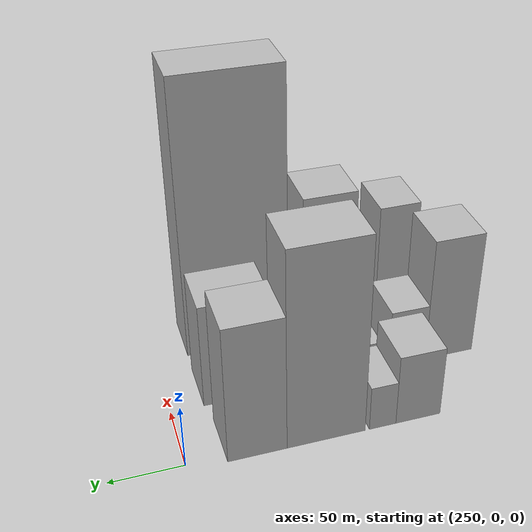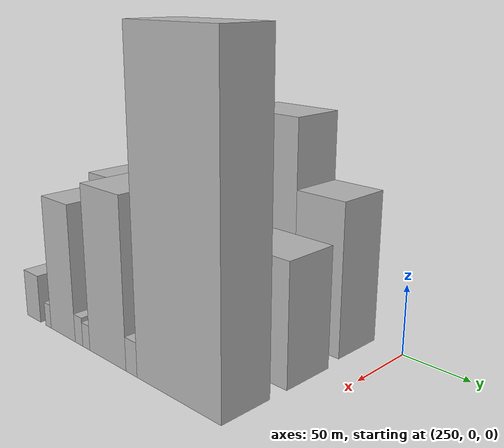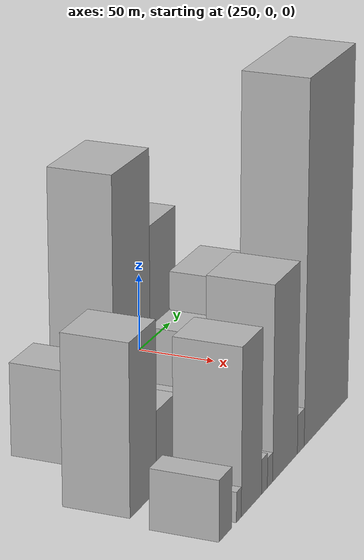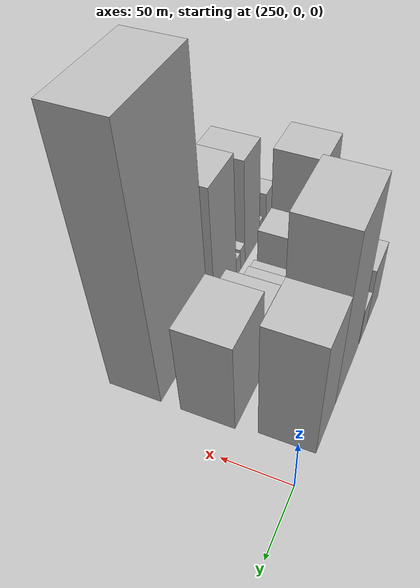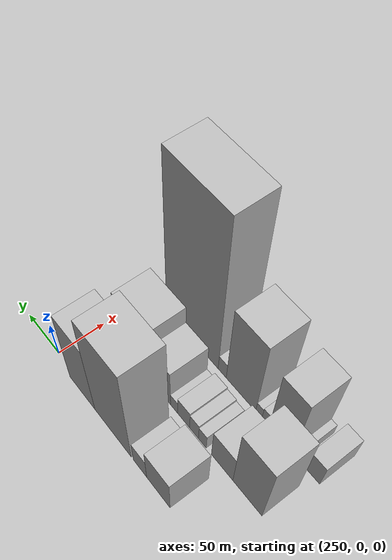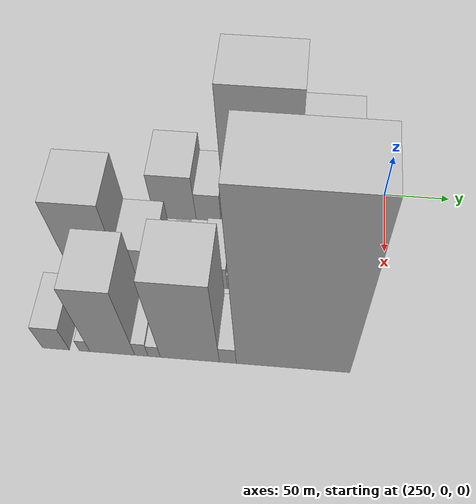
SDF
<sdf version="1.6">
 <world name="default">
  <model name="building_175">
   <static>1</static>
   <pose>265.0000 -158.5495 0 0.000000 0.000000 0.000000</pose>
   <link name="link">
    <pose>0 0 28.50 0 0 0</pose>
    <collision name="collision"><geometry><box><size>40.0000 32.2244 57.0000</size></box></geometry></collision>
    <visual name="visual">
     <cast_shadows>0</cast_shadows>
     <geometry><box><size>40.0000 32.2244 57.0000</size></box></geometry>
     <material>
      <script>
       <uri>model://HANNAS_wall/materials/scripts</uri>
       <uri>model://HANNAS_wall/materials/textures</uri>
       <name>vrc/HANNAS_wall</name>
      </script>
     </material>
    </visual>
   </link>
  </model>
  <model name="building_176">
   <static>1</static>
   <pose>265.0000 -132.9530 0 0.000000 0.000000 0.000000</pose>
   <link name="link">
    <pose>0 0 18.00 0 0 0</pose>
    <collision name="collision"><geometry><box><size>40.0000 18.9686 36.0000</size></box></geometry></collision>
    <visual name="visual">
     <cast_shadows>0</cast_shadows>
     <geometry><box><size>40.0000 18.9686 36.0000</size></box></geometry>
     <material>
      <script>
       <uri>model://HANNAS_wall/materials/scripts</uri>
       <uri>model://HANNAS_wall/materials/textures</uri>
       <name>vrc/HANNAS_wall</name>
      </script>
     </material>
    </visual>
   </link>
  </model>
  <model name="building_177">
   <static>1</static>
   <pose>265.0000 -93.3494 0 0.000000 0.000000 0.000000</pose>
   <link name="link">
    <pose>0 0 78.00 0 0 0</pose>
    <collision name="collision"><geometry><box><size>40.0000 54.2386 156.0000</size></box></geometry></collision>
    <visual name="visual">
     <cast_shadows>0</cast_shadows>
     <geometry><box><size>40.0000 54.2386 156.0000</size></box></geometry>
     <material>
      <script>
       <uri>model://HANNAS_wall/materials/scripts</uri>
       <uri>model://HANNAS_wall/materials/textures</uri>
       <name>vrc/HANNAS_wall</name>
      </script>
     </material>
    </visual>
   </link>
  </model>
  <model name="building_178">
   <static>1</static>
   <pose>265.0000 -46.3522 0 0.000000 0.000000 0.000000</pose>
   <link name="link">
    <pose>0 0 54.00 0 0 0</pose>
    <collision name="collision"><geometry><box><size>40.0000 39.7559 108.0000</size></box></geometry></collision>
    <visual name="visual">
     <cast_shadows>0</cast_shadows>
     <geometry><box><size>40.0000 39.7559 108.0000</size></box></geometry>
     <material>
      <script>
       <uri>model://HANNAS_wall/materials/scripts</uri>
       <uri>model://HANNAS_wall/materials/textures</uri>
       <name>vrc/HANNAS_wall</name>
      </script>
     </material>
    </visual>
   </link>
  </model>
  <model name="building_226">
   <static>1</static>
   <pose>320.0000 -206.5308 0 0.000000 0.000000 0.000000</pose>
   <link name="link">
    <pose>0 0 51.00 0 0 0</pose>
    <collision name="collision"><geometry><box><size>40.0000 37.0208 102.0000</size></box></geometry></collision>
    <visual name="visual">
     <cast_shadows>0</cast_shadows>
     <geometry><box><size>40.0000 37.0208 102.0000</size></box></geometry>
     <material>
      <script>
       <uri>model://HANNAS_wall/materials/scripts</uri>
       <uri>model://HANNAS_wall/materials/textures</uri>
       <name>vrc/HANNAS_wall</name>
      </script>
     </material>
    </visual>
   </link>
  </model>
  <model name="building_227">
   <static>1</static>
   <pose>320.0000 -173.8043 0 0.000000 0.000000 0.000000</pose>
   <link name="link">
    <pose>0 0 24.00 0 0 0</pose>
    <collision name="collision"><geometry><box><size>40.0000 28.4322 48.0000</size></box></geometry></collision>
    <visual name="visual">
     <cast_shadows>0</cast_shadows>
     <geometry><box><size>40.0000 28.4322 48.0000</size></box></geometry>
     <material>
      <script>
       <uri>model://HANNAS_wall/materials/scripts</uri>
       <uri>model://HANNAS_wall/materials/textures</uri>
       <name>vrc/HANNAS_wall</name>
      </script>
     </material>
    </visual>
   </link>
  </model>
  <model name="building_228">
   <static>1</static>
   <pose>320.0000 -147.2579 0 0.000000 0.000000 0.000000</pose>
   <link name="link">
    <pose>0 0 12.00 0 0 0</pose>
    <collision name="collision"><geometry><box><size>40.0000 10.6607 24.0000</size></box></geometry></collision>
    <visual name="visual">
     <cast_shadows>0</cast_shadows>
     <geometry><box><size>40.0000 10.6607 24.0000</size></box></geometry>
     <material>
      <script>
       <uri>model://HANNAS_wall/materials/scripts</uri>
       <uri>model://HANNAS_wall/materials/textures</uri>
       <name>vrc/HANNAS_wall</name>
      </script>
     </material>
    </visual>
   </link>
  </model>
  <model name="building_229">
   <static>1</static>
   <pose>320.0000 -135.8293 0 0.000000 0.000000 0.000000</pose>
   <link name="link">
    <pose>0 0 13.50 0 0 0</pose>
    <collision name="collision"><geometry><box><size>40.0000 12.1966 27.0000</size></box></geometry></collision>
    <visual name="visual">
     <cast_shadows>0</cast_shadows>
     <geometry><box><size>40.0000 12.1966 27.0000</size></box></geometry>
     <material>
      <script>
       <uri>model://HANNAS_wall/materials/scripts</uri>
       <uri>model://HANNAS_wall/materials/textures</uri>
       <name>vrc/HANNAS_wall</name>
      </script>
     </material>
    </visual>
   </link>
  </model>
  <model name="building_230">
   <static>1</static>
   <pose>320.0000 -121.1791 0 0.000000 0.000000 0.000000</pose>
   <link name="link">
    <pose>0 0 15.00 0 0 0</pose>
    <collision name="collision"><geometry><box><size>40.0000 17.1039 30.0000</size></box></geometry></collision>
    <visual name="visual">
     <cast_shadows>0</cast_shadows>
     <geometry><box><size>40.0000 17.1039 30.0000</size></box></geometry>
     <material>
      <script>
       <uri>model://HANNAS_wall/materials/scripts</uri>
       <uri>model://HANNAS_wall/materials/textures</uri>
       <name>vrc/HANNAS_wall</name>
      </script>
     </material>
    </visual>
   </link>
  </model>
  <model name="building_231">
   <static>1</static>
   <pose>320.0000 -107.5529 0 0.000000 0.000000 0.000000</pose>
   <link name="link">
    <pose>0 0 10.50 0 0 0</pose>
    <collision name="collision"><geometry><box><size>40.0000 10.1485 21.0000</size></box></geometry></collision>
    <visual name="visual">
     <cast_shadows>0</cast_shadows>
     <geometry><box><size>40.0000 10.1485 21.0000</size></box></geometry>
     <material>
      <script>
       <uri>model://HANNAS_wall/materials/scripts</uri>
       <uri>model://HANNAS_wall/materials/textures</uri>
       <name>vrc/HANNAS_wall</name>
      </script>
     </material>
    </visual>
   </link>
  </model>
  <model name="building_232">
   <static>1</static>
   <pose>320.0000 -87.2194 0 0.000000 0.000000 0.000000</pose>
   <link name="link">
    <pose>0 0 30.00 0 0 0</pose>
    <collision name="collision"><geometry><box><size>40.0000 30.5185 60.0000</size></box></geometry></collision>
    <visual name="visual">
     <cast_shadows>0</cast_shadows>
     <geometry><box><size>40.0000 30.5185 60.0000</size></box></geometry>
     <material>
      <script>
       <uri>model://HANNAS_wall/materials/scripts</uri>
       <uri>model://HANNAS_wall/materials/textures</uri>
       <name>vrc/HANNAS_wall</name>
      </script>
     </material>
    </visual>
   </link>
  </model>
  <model name="building_233">
   <static>1</static>
   <pose>320.0000 -47.6377 0 0.000000 0.000000 0.000000</pose>
   <link name="link">
    <pose>0 0 42.00 0 0 0</pose>
    <collision name="collision"><geometry><box><size>40.0000 48.6450 84.0000</size></box></geometry></collision>
    <visual name="visual">
     <cast_shadows>0</cast_shadows>
     <geometry><box><size>40.0000 48.6450 84.0000</size></box></geometry>
     <material>
      <script>
       <uri>model://HANNAS_wall/materials/scripts</uri>
       <uri>model://HANNAS_wall/materials/textures</uri>
       <name>vrc/HANNAS_wall</name>
      </script>
     </material>
    </visual>
   </link>
  </model>
  <model name="building_282">
   <static>1</static>
   <pose>375.0000 -224.6952 0 0.000000 0.000000 0.000000</pose>
   <link name="link">
    <pose>0 0 18.00 0 0 0</pose>
    <collision name="collision"><geometry><box><size>40.0000 18.5816 36.0000</size></box></geometry></collision>
    <visual name="visual">
     <cast_shadows>0</cast_shadows>
     <geometry><box><size>40.0000 18.5816 36.0000</size></box></geometry>
     <material>
      <script>
       <uri>model://HANNAS_wall/materials/scripts</uri>
       <uri>model://HANNAS_wall/materials/textures</uri>
       <name>vrc/HANNAS_wall</name>
      </script>
     </material>
    </visual>
   </link>
  </model>
  <model name="building_283">
   <static>1</static>
   <pose>375.0000 -204.7558 0 0.000000 0.000000 0.000000</pose>
   <link name="link">
    <pose>0 0 9.00 0 0 0</pose>
    <collision name="collision"><geometry><box><size>40.0000 7.2972 18.0000</size></box></geometry></collision>
    <visual name="visual">
     <cast_shadows>0</cast_shadows>
     <geometry><box><size>40.0000 7.2972 18.0000</size></box></geometry>
     <material>
      <script>
       <uri>model://HANNAS_wall/materials/scripts</uri>
       <uri>model://HANNAS_wall/materials/textures</uri>
       <name>vrc/HANNAS_wall</name>
      </script>
     </material>
    </visual>
   </link>
  </model>
  <model name="building_284">
   <static>1</static>
   <pose>375.0000 -185.5710 0 0.000000 0.000000 0.000000</pose>
   <link name="link">
    <pose>0 0 49.50 0 0 0</pose>
    <collision name="collision"><geometry><box><size>40.0000 31.0723 99.0000</size></box></geometry></collision>
    <visual name="visual">
     <cast_shadows>0</cast_shadows>
     <geometry><box><size>40.0000 31.0723 99.0000</size></box></geometry>
     <material>
      <script>
       <uri>model://HANNAS_wall/materials/scripts</uri>
       <uri>model://HANNAS_wall/materials/textures</uri>
       <name>vrc/HANNAS_wall</name>
      </script>
     </material>
    </visual>
   </link>
  </model>
  <model name="building_285">
   <static>1</static>
   <pose>375.0000 -165.4192 0 0.000000 0.000000 0.000000</pose>
   <link name="link">
    <pose>0 0 10.50 0 0 0</pose>
    <collision name="collision"><geometry><box><size>40.0000 9.2313 21.0000</size></box></geometry></collision>
    <visual name="visual">
     <cast_shadows>0</cast_shadows>
     <geometry><box><size>40.0000 9.2313 21.0000</size></box></geometry>
     <material>
      <script>
       <uri>model://HANNAS_wall/materials/scripts</uri>
       <uri>model://HANNAS_wall/materials/textures</uri>
       <name>vrc/HANNAS_wall</name>
      </script>
     </material>
    </visual>
   </link>
  </model>
  <model name="building_286">
   <static>1</static>
   <pose>375.0000 -156.6110 0 0.000000 0.000000 0.000000</pose>
   <link name="link">
    <pose>0 0 9.00 0 0 0</pose>
    <collision name="collision"><geometry><box><size>40.0000 8.3849 18.0000</size></box></geometry></collision>
    <visual name="visual">
     <cast_shadows>0</cast_shadows>
     <geometry><box><size>40.0000 8.3849 18.0000</size></box></geometry>
     <material>
      <script>
       <uri>model://HANNAS_wall/materials/scripts</uri>
       <uri>model://HANNAS_wall/materials/textures</uri>
       <name>vrc/HANNAS_wall</name>
      </script>
     </material>
    </visual>
   </link>
  </model>
  <model name="building_287">
   <static>1</static>
   <pose>375.0000 -132.1917 0 0.000000 0.000000 0.000000</pose>
   <link name="link">
    <pose>0 0 58.50 0 0 0</pose>
    <collision name="collision"><geometry><box><size>40.0000 40.4537 117.0000</size></box></geometry></collision>
    <visual name="visual">
     <cast_shadows>0</cast_shadows>
     <geometry><box><size>40.0000 40.4537 117.0000</size></box></geometry>
     <material>
      <script>
       <uri>model://HANNAS_wall/materials/scripts</uri>
       <uri>model://HANNAS_wall/materials/textures</uri>
       <name>vrc/HANNAS_wall</name>
      </script>
     </material>
    </visual>
   </link>
  </model>
  <model name="building_288">
   <static>1</static>
   <pose>375.0000 -106.2116 0 0.000000 0.000000 0.000000</pose>
   <link name="link">
    <pose>0 0 12.00 0 0 0</pose>
    <collision name="collision"><geometry><box><size>40.0000 11.5066 24.0000</size></box></geometry></collision>
    <visual name="visual">
     <cast_shadows>0</cast_shadows>
     <geometry><box><size>40.0000 11.5066 24.0000</size></box></geometry>
     <material>
      <script>
       <uri>model://HANNAS_wall/materials/scripts</uri>
       <uri>model://HANNAS_wall/materials/textures</uri>
       <name>vrc/HANNAS_wall</name>
      </script>
     </material>
    </visual>
   </link>
  </model>
  <model name="building_289">
   <static>1</static>
   <pose>375.0000 -61.9951 0 0.000000 0.000000 0.000000</pose>
   <link name="link">
    <pose>0 0 109.50 0 0 0</pose>
    <collision name="collision"><geometry><box><size>40.0000 76.9265 219.0000</size></box></geometry></collision>
    <visual name="visual">
     <cast_shadows>0</cast_shadows>
     <geometry><box><size>40.0000 76.9265 219.0000</size></box></geometry>
     <material>
      <script>
       <uri>model://HANNAS_wall/materials/scripts</uri>
       <uri>model://HANNAS_wall/materials/textures</uri>
       <name>vrc/HANNAS_wall</name>
      </script>
     </material>
    </visual>
   </link>
  </model>
 </world>
</sdf>
